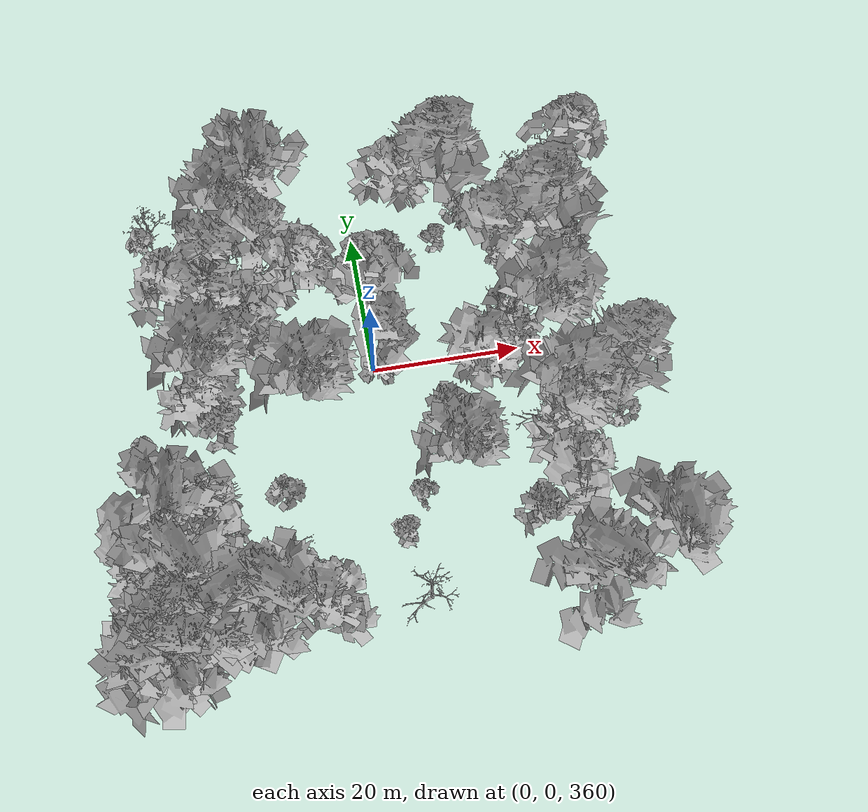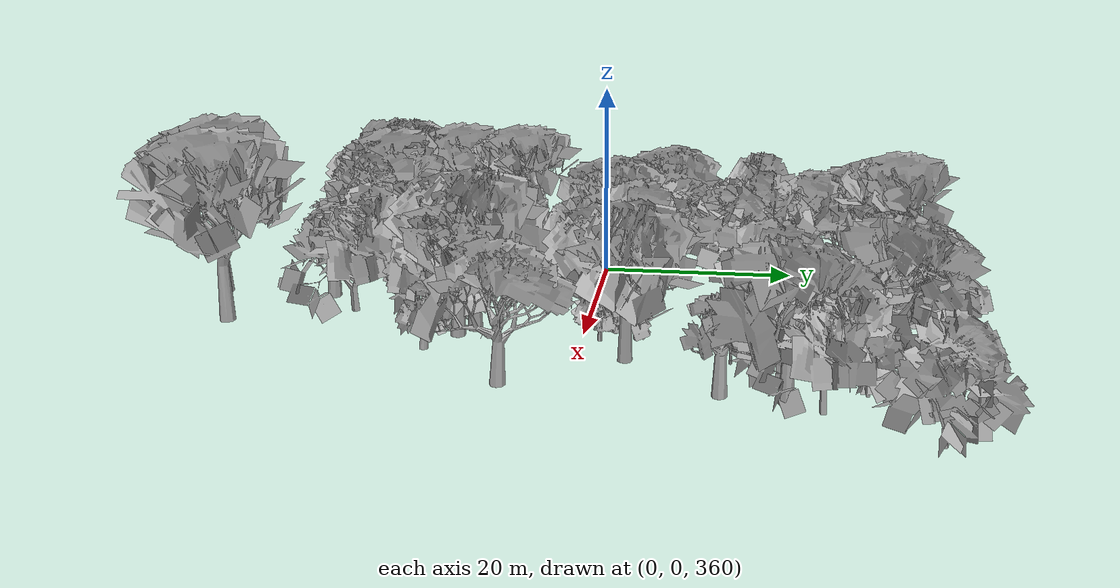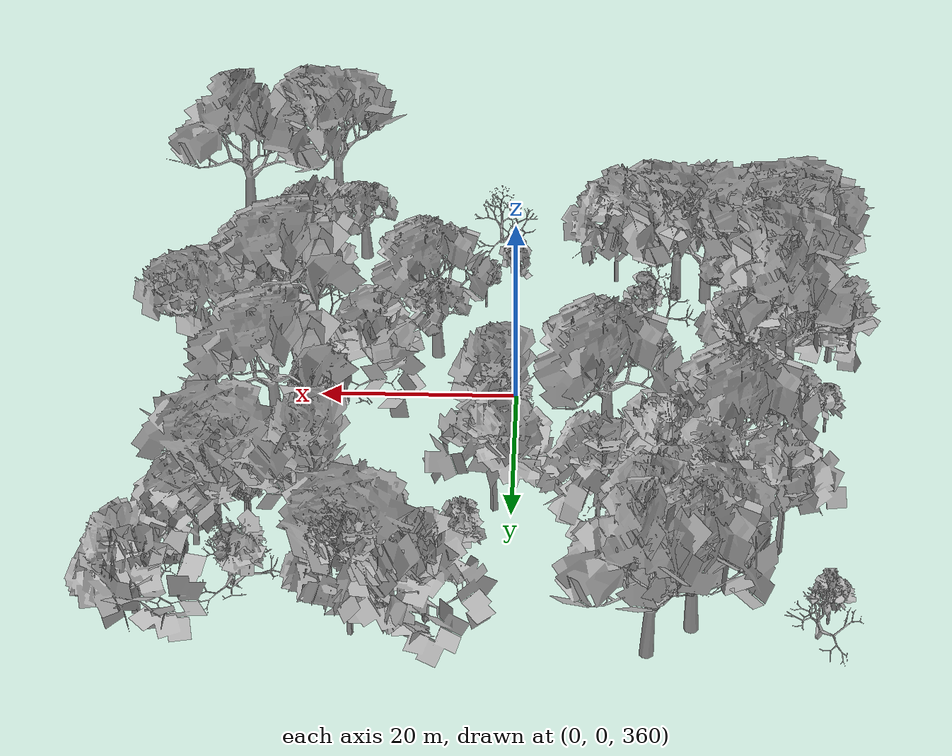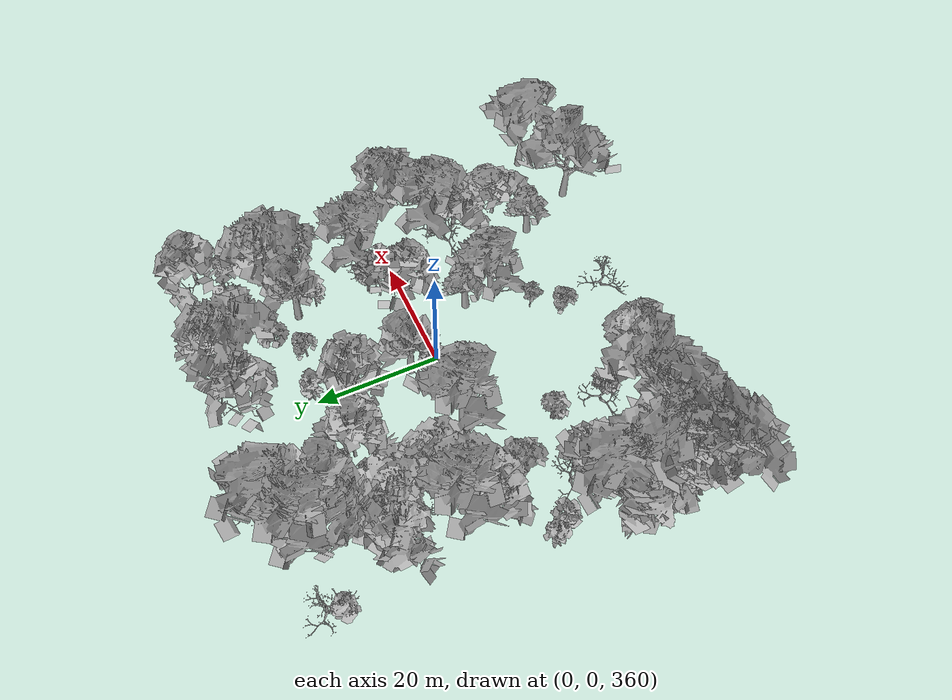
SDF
<sdf version="1.6">
 <world name="default">
  <light name="sun" type="directional">
   <pose>0 0 10 0 -0 0</pose>
   <diffuse>0.8 0.8 0.8 1</diffuse>
   <specular>0.2 0.2 0.2 1</specular>
   <attenuation>
    <range>1000</range>
    <constant>0.9</constant>
    <linear>0.01</linear>
    <quadratic>0.001</quadratic>
   </attenuation>
   <direction>-0.5 0.1 -0.9</direction>
  </light>
  <scene>
   <sky><clouds><speed>12</speed></clouds></sky>
   <ambient>0.4 0.4 0.4 1</ambient>
   <background>0.7 0.7 0.7 1</background>
   <shadows>1</shadows>
  </scene>
  <spherical_coordinates>
   <surface_model>EARTH_WGS84</surface_model>
   <latitude_deg>47.3977</latitude_deg>
   <longitude_deg>8.54559</longitude_deg>
   <elevation>0</elevation>
   <heading_deg>0</heading_deg>
  </spherical_coordinates>
  <physics name="default_physics" default="0" type="ode">
   <ode>
    <solver>
     <type>quick</type>
     <iters>100</iters>
     <sor>1.3</sor>
     <use_dynamic_moi_rescaling>0</use_dynamic_moi_rescaling>
    </solver>
    <constraints>
     <cfm>0</cfm>
     <erp>0.2</erp>
     <contact_max_correcting_vel>100</contact_max_correcting_vel>
     <contact_surface_layer>0.001</contact_surface_layer>
    </constraints>
   </ode>
   <max_step_size>0.002</max_step_size>
   <real_time_factor>1</real_time_factor>
   <real_time_update_rate>500</real_time_update_rate>
  </physics>
  <gravity>0 0 -9.8</gravity>
  <magnetic_field>6e-06 2.3e-05 -4.2e-05</magnetic_field>
  <atmosphere type="adiabatic"/>
  <model name="my_mesh0">
   <pose>-21.0937 -29.2709 353.945 0 -0 0.803392</pose>
   <static>1</static>
   <link name="body">
    <visual name="visual">
     <geometry><mesh><uri>model://trees/10.dae</uri><scale>1 1 1</scale></mesh></geometry>
    </visual>
    <collision name="collision">
     <geometry><mesh><uri>model://trees/10.dae</uri><scale>1 1 1</scale></mesh></geometry>
    </collision>
   </link>
  </model>
  <model name="my_mesh1">
   <pose>-24.0967 -15.4339 353.551 0 -0 0.325748</pose>
   <static>1</static>
   <link name="body">
    <visual name="visual">
     <geometry><mesh><uri>model://trees/13.dae</uri><scale>1 1 1</scale></mesh></geometry>
    </visual>
    <collision name="collision">
     <geometry><mesh><uri>model://trees/13.dae</uri><scale>1 1 1</scale></mesh></geometry>
    </collision>
   </link>
  </model>
  <model name="my_mesh2">
   <pose>-28.8484 -27.6677 352.948 0 0 -1.1947</pose>
   <static>1</static>
   <link name="body">
    <visual name="visual">
     <geometry><mesh><uri>model://trees/3.dae</uri><scale>1 1 1</scale></mesh></geometry>
    </visual>
    <collision name="collision">
     <geometry><mesh><uri>model://trees/3.dae</uri><scale>1 1 1</scale></mesh></geometry>
    </collision>
   </link>
  </model>
  <model name="my_mesh3">
   <pose>-23.1699 -17.8684 353.711 0 0 -0.718044</pose>
   <static>1</static>
   <link name="body">
    <visual name="visual">
     <geometry><mesh><uri>model://trees/19.dae</uri><scale>1 1 1</scale></mesh></geometry>
    </visual>
    <collision name="collision">
     <geometry><mesh><uri>model://trees/19.dae</uri><scale>1 1 1</scale></mesh></geometry>
    </collision>
   </link>
  </model>
  <model name="my_mesh4">
   <pose>-29.9244 -28.579 352.865 0 -0 0.68957</pose>
   <static>1</static>
   <link name="body">
    <visual name="visual">
     <geometry><mesh><uri>model://trees/13.dae</uri><scale>1 1 1</scale></mesh></geometry>
    </visual>
    <collision name="collision">
     <geometry><mesh><uri>model://trees/13.dae</uri><scale>1 1 1</scale></mesh></geometry>
    </collision>
   </link>
  </model>
  <model name="my_mesh5">
   <pose>-32.4097 -27.014 352.391 0 -0 1.21847</pose>
   <static>1</static>
   <link name="body">
    <visual name="visual">
     <geometry><mesh><uri>model://trees/5.dae</uri><scale>1 1 1</scale></mesh></geometry>
    </visual>
    <collision name="collision">
     <geometry><mesh><uri>model://trees/5.dae</uri><scale>1 1 1</scale></mesh></geometry>
    </collision>
   </link>
  </model>
  <model name="my_mesh6">
   <pose>-23.5119 -28.0238 353.686 0 -0 0.191513</pose>
   <static>1</static>
   <link name="body">
    <visual name="visual">
     <geometry><mesh><uri>model://trees/3.dae</uri><scale>1 1 1</scale></mesh></geometry>
    </visual>
    <collision name="collision">
     <geometry><mesh><uri>model://trees/3.dae</uri><scale>1 1 1</scale></mesh></geometry>
    </collision>
   </link>
  </model>
  <model name="my_mesh7">
   <pose>-34.4736 -19.7053 352.024 0 0 -0.245317</pose>
   <static>1</static>
   <link name="body">
    <visual name="visual">
     <geometry><mesh><uri>model://trees/13.dae</uri><scale>1 1 1</scale></mesh></geometry>
    </visual>
    <collision name="collision">
     <geometry><mesh><uri>model://trees/13.dae</uri><scale>1 1 1</scale></mesh></geometry>
    </collision>
   </link>
  </model>
  <model name="my_mesh8">
   <pose>-29.6144 -18.1094 352.711 0 -0 0.278725</pose>
   <static>1</static>
   <link name="body">
    <visual name="visual">
     <geometry><mesh><uri>model://trees/7.dae</uri><scale>1 1 1</scale></mesh></geometry>
    </visual>
    <collision name="collision">
     <geometry><mesh><uri>model://trees/7.dae</uri><scale>1 1 1</scale></mesh></geometry>
    </collision>
   </link>
  </model>
  <model name="my_mesh9">
   <pose>-31.7036 -28.1251 352.481 0 0 -1.17195</pose>
   <static>1</static>
   <link name="body">
    <visual name="visual">
     <geometry><mesh><uri>model://trees/14.dae</uri><scale>1 1 1</scale></mesh></geometry>
    </visual>
    <collision name="collision">
     <geometry><mesh><uri>model://trees/14.dae</uri><scale>1 1 1</scale></mesh></geometry>
    </collision>
   </link>
  </model>
  <model name="my_mesh10">
   <pose>-24.0845 -27.4253 353.578 0 0 -1.37187</pose>
   <static>1</static>
   <link name="body">
    <visual name="visual">
     <geometry><mesh><uri>model://trees/7.dae</uri><scale>1 1 1</scale></mesh></geometry>
    </visual>
    <collision name="collision">
     <geometry><mesh><uri>model://trees/7.dae</uri><scale>1 1 1</scale></mesh></geometry>
    </collision>
   </link>
  </model>
  <model name="my_mesh11">
   <pose>-31.2506 -33.5179 352.754 0 -0 0.18969</pose>
   <static>1</static>
   <link name="body">
    <visual name="visual">
     <geometry><mesh><uri>model://trees/15.dae</uri><scale>1 1 1</scale></mesh></geometry>
    </visual>
    <collision name="collision">
     <geometry><mesh><uri>model://trees/15.dae</uri><scale>1 1 1</scale></mesh></geometry>
    </collision>
   </link>
  </model>
  <model name="my_mesh12">
   <pose>-30.0715 -30.1275 352.904 0 -0 1.36698</pose>
   <static>1</static>
   <link name="body">
    <visual name="visual">
     <geometry><mesh><uri>model://trees/10.dae</uri><scale>1 1 1</scale></mesh></geometry>
    </visual>
    <collision name="collision">
     <geometry><mesh><uri>model://trees/10.dae</uri><scale>1 1 1</scale></mesh></geometry>
    </collision>
   </link>
  </model>
  <model name="my_mesh13">
   <pose>-29.1283 -20.3893 352.859 0 0 -0.815976</pose>
   <static>1</static>
   <link name="body">
    <visual name="visual">
     <geometry><mesh><uri>model://trees/8.dae</uri><scale>1 1 1</scale></mesh></geometry>
    </visual>
    <collision name="collision">
     <geometry><mesh><uri>model://trees/8.dae</uri><scale>1 1 1</scale></mesh></geometry>
    </collision>
   </link>
  </model>
  <model name="my_mesh14">
   <pose>-33.6854 -34.6456 352.207 0 -0 0.095934</pose>
   <static>1</static>
   <link name="body">
    <visual name="visual">
     <geometry><mesh><uri>model://trees/9.dae</uri><scale>1 1 1</scale></mesh></geometry>
    </visual>
    <collision name="collision">
     <geometry><mesh><uri>model://trees/9.dae</uri><scale>1 1 1</scale></mesh></geometry>
    </collision>
   </link>
  </model>
  <model name="my_mesh15">
   <pose>-29.0877 -18.7333 352.818 0 -0 0.431431</pose>
   <static>1</static>
   <link name="body">
    <visual name="visual">
     <geometry><mesh><uri>model://trees/16.dae</uri><scale>1 1 1</scale></mesh></geometry>
    </visual>
    <collision name="collision">
     <geometry><mesh><uri>model://trees/16.dae</uri><scale>1 1 1</scale></mesh></geometry>
    </collision>
   </link>
  </model>
  <model name="my_mesh16">
   <pose>-30.6814 -24.1357 352.759 0 0 -0.126395</pose>
   <static>1</static>
   <link name="body">
    <visual name="visual">
     <geometry><mesh><uri>model://trees/12.dae</uri><scale>1 1 1</scale></mesh></geometry>
    </visual>
    <collision name="collision">
     <geometry><mesh><uri>model://trees/12.dae</uri><scale>1 1 1</scale></mesh></geometry>
    </collision>
   </link>
  </model>
  <model name="my_mesh17">
   <pose>-28.2578 -27.3263 353.018 0 -0 1.54987</pose>
   <static>1</static>
   <link name="body">
    <visual name="visual">
     <geometry><mesh><uri>model://trees/18.dae</uri><scale>1 1 1</scale></mesh></geometry>
    </visual>
    <collision name="collision">
     <geometry><mesh><uri>model://trees/18.dae</uri><scale>1 1 1</scale></mesh></geometry>
    </collision>
   </link>
  </model>
  <model name="my_mesh18">
   <pose>-29.8808 -30.0268 352.894 0 -0 0.288132</pose>
   <static>1</static>
   <link name="body">
    <visual name="visual">
     <geometry><mesh><uri>model://trees/10.dae</uri><scale>1 1 1</scale></mesh></geometry>
    </visual>
    <collision name="collision">
     <geometry><mesh><uri>model://trees/10.dae</uri><scale>1 1 1</scale></mesh></geometry>
    </collision>
   </link>
  </model>
  <model name="my_mesh19">
   <pose>-28.3711 -30.736 353.081 0 -0 1.29102</pose>
   <static>1</static>
   <link name="body">
    <visual name="visual">
     <geometry><mesh><uri>model://trees/16.dae</uri><scale>1 1 1</scale></mesh></geometry>
    </visual>
    <collision name="collision">
     <geometry><mesh><uri>model://trees/16.dae</uri><scale>1 1 1</scale></mesh></geometry>
    </collision>
   </link>
  </model>
  <model name="my_mesh20">
   <pose>-32.4867 -30.1133 352.427 0 -0 1.41994</pose>
   <static>1</static>
   <link name="body">
    <visual name="visual">
     <geometry><mesh><uri>model://trees/3.dae</uri><scale>1 1 1</scale></mesh></geometry>
    </visual>
    <collision name="collision">
     <geometry><mesh><uri>model://trees/3.dae</uri><scale>1 1 1</scale></mesh></geometry>
    </collision>
   </link>
  </model>
  <model name="my_mesh21">
   <pose>-25.061 -11.382 353.367 0 -0 0.464776</pose>
   <static>1</static>
   <link name="body">
    <visual name="visual">
     <geometry><mesh><uri>model://trees/19.dae</uri><scale>1 1 1</scale></mesh></geometry>
    </visual>
    <collision name="collision">
     <geometry><mesh><uri>model://trees/19.dae</uri><scale>1 1 1</scale></mesh></geometry>
    </collision>
   </link>
  </model>
  <model name="my_mesh22">
   <pose>-25.4407 -30.2894 353.395 0 0 -0.751216</pose>
   <static>1</static>
   <link name="body">
    <visual name="visual">
     <geometry><mesh><uri>model://trees/2.dae</uri><scale>1 1 1</scale></mesh></geometry>
    </visual>
    <collision name="collision">
     <geometry><mesh><uri>model://trees/2.dae</uri><scale>1 1 1</scale></mesh></geometry>
    </collision>
   </link>
  </model>
  <model name="my_mesh23">
   <pose>-22.2885 -33.4067 353.871 0 -0 0.833382</pose>
   <static>1</static>
   <link name="body">
    <visual name="visual">
     <geometry><mesh><uri>model://trees/11.dae</uri><scale>1 1 1</scale></mesh></geometry>
    </visual>
    <collision name="collision">
     <geometry><mesh><uri>model://trees/11.dae</uri><scale>1 1 1</scale></mesh></geometry>
    </collision>
   </link>
  </model>
  <model name="my_mesh24">
   <pose>-32.5269 -4.64422 352.818 0 0 -0.178767</pose>
   <static>1</static>
   <link name="body">
    <visual name="visual">
     <geometry><mesh><uri>model://trees/2.dae</uri><scale>1 1 1</scale></mesh></geometry>
    </visual>
    <collision name="collision">
     <geometry><mesh><uri>model://trees/2.dae</uri><scale>1 1 1</scale></mesh></geometry>
    </collision>
   </link>
  </model>
  <model name="my_mesh25">
   <pose>-30.4619 -28.241 352.772 0 -0 0.297751</pose>
   <static>1</static>
   <link name="body">
    <visual name="visual">
     <geometry><mesh><uri>model://trees/13.dae</uri><scale>1 1 1</scale></mesh></geometry>
    </visual>
    <collision name="collision">
     <geometry><mesh><uri>model://trees/13.dae</uri><scale>1 1 1</scale></mesh></geometry>
    </collision>
   </link>
  </model>
  <model name="my_mesh26">
   <pose>-29.2107 -13.8261 352.818 0 0 -1.39613</pose>
   <static>1</static>
   <link name="body">
    <visual name="visual">
     <geometry><mesh><uri>model://trees/10.dae</uri><scale>1 1 1</scale></mesh></geometry>
    </visual>
    <collision name="collision">
     <geometry><mesh><uri>model://trees/10.dae</uri><scale>1 1 1</scale></mesh></geometry>
    </collision>
   </link>
  </model>
  <model name="my_mesh27">
   <pose>-34.3695 -32.342 352.13 0 0 -1.32479</pose>
   <static>1</static>
   <link name="body">
    <visual name="visual">
     <geometry><mesh><uri>model://trees/2.dae</uri><scale>1 1 1</scale></mesh></geometry>
    </visual>
    <collision name="collision">
     <geometry><mesh><uri>model://trees/2.dae</uri><scale>1 1 1</scale></mesh></geometry>
    </collision>
   </link>
  </model>
  <model name="my_mesh28">
   <pose>-28.1252 -32.7603 353.118 0 0 -1.31243</pose>
   <static>1</static>
   <link name="body">
    <visual name="visual">
     <geometry><mesh><uri>model://trees/7.dae</uri><scale>1 1 1</scale></mesh></geometry>
    </visual>
    <collision name="collision">
     <geometry><mesh><uri>model://trees/7.dae</uri><scale>1 1 1</scale></mesh></geometry>
    </collision>
   </link>
  </model>
  <model name="my_mesh29">
   <pose>-29.2169 -22.7895 352.891 0 0 -0.781876</pose>
   <static>1</static>
   <link name="body">
    <visual name="visual">
     <geometry><mesh><uri>model://trees/10.dae</uri><scale>1 1 1</scale></mesh></geometry>
    </visual>
    <collision name="collision">
     <geometry><mesh><uri>model://trees/10.dae</uri><scale>1 1 1</scale></mesh></geometry>
    </collision>
   </link>
  </model>
  <model name="my_mesh30">
   <pose>-30.6074 -33.4955 352.879 0 0 -0.028469</pose>
   <static>1</static>
   <link name="body">
    <visual name="visual">
     <geometry><mesh><uri>model://trees/10.dae</uri><scale>1 1 1</scale></mesh></geometry>
    </visual>
    <collision name="collision">
     <geometry><mesh><uri>model://trees/10.dae</uri><scale>1 1 1</scale></mesh></geometry>
    </collision>
   </link>
  </model>
  <model name="my_mesh31">
   <pose>-28.537 -34.5009 353.165 0 -0 1.41308</pose>
   <static>1</static>
   <link name="body">
    <visual name="visual">
     <geometry><mesh><uri>model://trees/12.dae</uri><scale>1 1 1</scale></mesh></geometry>
    </visual>
    <collision name="collision">
     <geometry><mesh><uri>model://trees/12.dae</uri><scale>1 1 1</scale></mesh></geometry>
    </collision>
   </link>
  </model>
  <model name="my_mesh32">
   <pose>-10.8207 -30.727 355.674 0 -0 0.954999</pose>
   <static>1</static>
   <link name="body">
    <visual name="visual">
     <geometry><mesh><uri>model://trees/15.dae</uri><scale>1 1 1</scale></mesh></geometry>
    </visual>
    <collision name="collision">
     <geometry><mesh><uri>model://trees/15.dae</uri><scale>1 1 1</scale></mesh></geometry>
    </collision>
   </link>
  </model>
  <model name="my_mesh33">
   <pose>24.2402 -9.494 361.699 0 0 -1.3992</pose>
   <static>1</static>
   <link name="body">
    <visual name="visual">
     <geometry><mesh><uri>model://trees/9.dae</uri><scale>1 1 1</scale></mesh></geometry>
    </visual>
    <collision name="collision">
     <geometry><mesh><uri>model://trees/9.dae</uri><scale>1 1 1</scale></mesh></geometry>
    </collision>
   </link>
  </model>
  <model name="my_mesh34">
   <pose>11.6512 18.4843 356.266 0 -0 0.754608</pose>
   <static>1</static>
   <link name="body">
    <visual name="visual">
     <geometry><mesh><uri>model://trees/6.dae</uri><scale>1 1 1</scale></mesh></geometry>
    </visual>
    <collision name="collision">
     <geometry><mesh><uri>model://trees/6.dae</uri><scale>1 1 1</scale></mesh></geometry>
    </collision>
   </link>
  </model>
  <model name="my_mesh35">
   <pose>7.59549 29.8574 355.234 0 0 -0.29062</pose>
   <static>1</static>
   <link name="body">
    <visual name="visual">
     <geometry><mesh><uri>model://trees/12.dae</uri><scale>1 1 1</scale></mesh></geometry>
    </visual>
    <collision name="collision">
     <geometry><mesh><uri>model://trees/12.dae</uri><scale>1 1 1</scale></mesh></geometry>
    </collision>
   </link>
  </model>
  <model name="my_mesh36">
   <pose>-16.5834 22.527 354.117 0 0 -0.550388</pose>
   <static>1</static>
   <link name="body">
    <visual name="visual">
     <geometry><mesh><uri>model://trees/3.dae</uri><scale>1 1 1</scale></mesh></geometry>
    </visual>
    <collision name="collision">
     <geometry><mesh><uri>model://trees/3.dae</uri><scale>1 1 1</scale></mesh></geometry>
    </collision>
   </link>
  </model>
  <model name="my_mesh37">
   <pose>-9.44508 -0.34516 355.406 0 0 -0.841924</pose>
   <static>1</static>
   <link name="body">
    <visual name="visual">
     <geometry><mesh><uri>model://trees/9.dae</uri><scale>1 1 1</scale></mesh></geometry>
    </visual>
    <collision name="collision">
     <geometry><mesh><uri>model://trees/9.dae</uri><scale>1 1 1</scale></mesh></geometry>
    </collision>
   </link>
  </model>
  <model name="my_mesh38">
   <pose>-14.9752 -22.5165 354.799 0 0 -1.2599</pose>
   <static>1</static>
   <link name="body">
    <visual name="visual">
     <geometry><mesh><uri>model://trees/19.dae</uri><scale>1 1 1</scale></mesh></geometry>
    </visual>
    <collision name="collision">
     <geometry><mesh><uri>model://trees/19.dae</uri><scale>1 1 1</scale></mesh></geometry>
    </collision>
   </link>
  </model>
  <model name="my_mesh39">
   <pose>26.3848 -10.6156 361.888 0 0 -0.46755</pose>
   <static>1</static>
   <link name="body">
    <visual name="visual">
     <geometry><mesh><uri>model://trees/8.dae</uri><scale>1 1 1</scale></mesh></geometry>
    </visual>
    <collision name="collision">
     <geometry><mesh><uri>model://trees/8.dae</uri><scale>1 1 1</scale></mesh></geometry>
    </collision>
   </link>
  </model>
  <model name="my_mesh40">
   <pose>15.7483 22.7051 356.811 0 0 -1.55677</pose>
   <static>1</static>
   <link name="body">
    <visual name="visual">
     <geometry><mesh><uri>model://trees/4.dae</uri><scale>1 1 1</scale></mesh></geometry>
    </visual>
    <collision name="collision">
     <geometry><mesh><uri>model://trees/4.dae</uri><scale>1 1 1</scale></mesh></geometry>
    </collision>
   </link>
  </model>
  <model name="my_mesh41">
   <pose>-28.5342 29.14 353.177 0 -0 0.119997</pose>
   <static>1</static>
   <link name="body">
    <visual name="visual">
     <geometry><mesh><uri>model://trees/18.dae</uri><scale>1 1 1</scale></mesh></geometry>
    </visual>
    <collision name="collision">
     <geometry><mesh><uri>model://trees/18.dae</uri><scale>1 1 1</scale></mesh></geometry>
    </collision>
   </link>
  </model>
  <model name="my_mesh42">
   <pose>-19.5288 21.2679 353.87 0 -0 0.416565</pose>
   <static>1</static>
   <link name="body">
    <visual name="visual">
     <geometry><mesh><uri>model://trees/8.dae</uri><scale>1 1 1</scale></mesh></geometry>
    </visual>
    <collision name="collision">
     <geometry><mesh><uri>model://trees/8.dae</uri><scale>1 1 1</scale></mesh></geometry>
    </collision>
   </link>
  </model>
  <model name="my_mesh43">
   <pose>-12.5758 32.779 354.109 0 0 -1.31906</pose>
   <static>1</static>
   <link name="body">
    <visual name="visual">
     <geometry><mesh><uri>model://trees/10.dae</uri><scale>1 1 1</scale></mesh></geometry>
    </visual>
    <collision name="collision">
     <geometry><mesh><uri>model://trees/10.dae</uri><scale>1 1 1</scale></mesh></geometry>
    </collision>
   </link>
  </model>
  <model name="my_mesh44">
   <pose>-14.8237 7.59685 354.589 0 -0 0.719187</pose>
   <static>1</static>
   <link name="body">
    <visual name="visual">
     <geometry><mesh><uri>model://trees/13.dae</uri><scale>1 1 1</scale></mesh></geometry>
    </visual>
    <collision name="collision">
     <geometry><mesh><uri>model://trees/13.dae</uri><scale>1 1 1</scale></mesh></geometry>
    </collision>
   </link>
  </model>
  <model name="my_mesh45">
   <pose>14.2549 32.4206 355.708 0 -0 0.540369</pose>
   <static>1</static>
   <link name="body">
    <visual name="visual">
     <geometry><mesh><uri>model://trees/15.dae</uri><scale>1 1 1</scale></mesh></geometry>
    </visual>
    <collision name="collision">
     <geometry><mesh><uri>model://trees/15.dae</uri><scale>1 1 1</scale></mesh></geometry>
    </collision>
   </link>
  </model>
  <model name="my_mesh46">
   <pose>-23.0754 0.305509 354.078 0 0 -1.36816</pose>
   <static>1</static>
   <link name="body">
    <visual name="visual">
     <geometry><mesh><uri>model://trees/13.dae</uri><scale>1 1 1</scale></mesh></geometry>
    </visual>
    <collision name="collision">
     <geometry><mesh><uri>model://trees/13.dae</uri><scale>1 1 1</scale></mesh></geometry>
    </collision>
   </link>
  </model>
  <model name="my_mesh47">
   <pose>28.4452 18.7228 357.652 0 -0 1.49898</pose>
   <static>1</static>
   <link name="body">
    <visual name="visual">
     <geometry><mesh><uri>model://trees/9.dae</uri><scale>1 1 1</scale></mesh></geometry>
    </visual>
    <collision name="collision">
     <geometry><mesh><uri>model://trees/9.dae</uri><scale>1 1 1</scale></mesh></geometry>
    </collision>
   </link>
  </model>
  <model name="my_mesh48">
   <pose>29.1923 12.9495 358.355 0 -0 1.48645</pose>
   <static>1</static>
   <link name="body">
    <visual name="visual">
     <geometry><mesh><uri>model://trees/7.dae</uri><scale>1 1 1</scale></mesh></geometry>
    </visual>
    <collision name="collision">
     <geometry><mesh><uri>model://trees/7.dae</uri><scale>1 1 1</scale></mesh></geometry>
    </collision>
   </link>
  </model>
  <model name="my_mesh49">
   <pose>-14.0721 17.5345 354.425 0 0 -0.764304</pose>
   <static>1</static>
   <link name="body">
    <visual name="visual">
     <geometry><mesh><uri>model://trees/19.dae</uri><scale>1 1 1</scale></mesh></geometry>
    </visual>
    <collision name="collision">
     <geometry><mesh><uri>model://trees/19.dae</uri><scale>1 1 1</scale></mesh></geometry>
    </collision>
   </link>
  </model>
  <model name="my_mesh50">
   <pose>8.52029 -9.06345 359.086 0 0 -0.209013</pose>
   <static>1</static>
   <link name="body">
    <visual name="visual">
     <geometry><mesh><uri>model://trees/7.dae</uri><scale>1 1 1</scale></mesh></geometry>
    </visual>
    <collision name="collision">
     <geometry><mesh><uri>model://trees/7.dae</uri><scale>1 1 1</scale></mesh></geometry>
    </collision>
   </link>
  </model>
  <model name="my_mesh51">
   <pose>25.552 27.5409 357.231 0 0 -1.00813</pose>
   <static>1</static>
   <link name="body">
    <visual name="visual">
     <geometry><mesh><uri>model://trees/19.dae</uri><scale>1 1 1</scale></mesh></geometry>
    </visual>
    <collision name="collision">
     <geometry><mesh><uri>model://trees/19.dae</uri><scale>1 1 1</scale></mesh></geometry>
    </collision>
   </link>
  </model>
  <model name="my_mesh52">
   <pose>-13.0878 23.1092 354.485 0 0 -0.331727</pose>
   <static>1</static>
   <link name="body">
    <visual name="visual">
     <geometry><mesh><uri>model://trees/11.dae</uri><scale>1 1 1</scale></mesh></geometry>
    </visual>
    <collision name="collision">
     <geometry><mesh><uri>model://trees/11.dae</uri><scale>1 1 1</scale></mesh></geometry>
    </collision>
   </link>
  </model>
  <model name="my_mesh53">
   <pose>25.2312 18.5208 357.702 0 -0 0.098536</pose>
   <static>1</static>
   <link name="body">
    <visual name="visual">
     <geometry><mesh><uri>model://trees/3.dae</uri><scale>1 1 1</scale></mesh></geometry>
    </visual>
    <collision name="collision">
     <geometry><mesh><uri>model://trees/3.dae</uri><scale>1 1 1</scale></mesh></geometry>
    </collision>
   </link>
  </model>
  <model name="my_mesh54">
   <pose>-14.2242 -14.2795 354.788 0 0 -0.232914</pose>
   <static>1</static>
   <link name="body">
    <visual name="visual">
     <geometry><mesh><uri>model://trees/4.dae</uri><scale>1 1 1</scale></mesh></geometry>
    </visual>
    <collision name="collision">
     <geometry><mesh><uri>model://trees/4.dae</uri><scale>1 1 1</scale></mesh></geometry>
    </collision>
   </link>
  </model>
  <model name="my_mesh55">
   <pose>31.0448 -12.5978 362.37 0 0 -0.84817</pose>
   <static>1</static>
   <link name="body">
    <visual name="visual">
     <geometry><mesh><uri>model://trees/0.dae</uri><scale>1 1 1</scale></mesh></geometry>
    </visual>
    <collision name="collision">
     <geometry><mesh><uri>model://trees/0.dae</uri><scale>1 1 1</scale></mesh></geometry>
    </collision>
   </link>
  </model>
  <model name="my_mesh56">
   <pose>-13.8737 -23.6187 354.878 0 -0 1.39987</pose>
   <static>1</static>
   <link name="body">
    <visual name="visual">
     <geometry><mesh><uri>model://trees/1.dae</uri><scale>1 1 1</scale></mesh></geometry>
    </visual>
    <collision name="collision">
     <geometry><mesh><uri>model://trees/1.dae</uri><scale>1 1 1</scale></mesh></geometry>
    </collision>
   </link>
  </model>
  <model name="my_mesh57">
   <pose>-16.8295 28.9985 353.928 0 0 -0.88431</pose>
   <static>1</static>
   <link name="body">
    <visual name="visual">
     <geometry><mesh><uri>model://trees/9.dae</uri><scale>1 1 1</scale></mesh></geometry>
    </visual>
    <collision name="collision">
     <geometry><mesh><uri>model://trees/9.dae</uri><scale>1 1 1</scale></mesh></geometry>
    </collision>
   </link>
  </model>
  <model name="my_mesh58">
   <pose>1.8389 13.5635 355.742 0 -0 1.30541</pose>
   <static>1</static>
   <link name="body">
    <visual name="visual">
     <geometry><mesh><uri>model://trees/14.dae</uri><scale>1 1 1</scale></mesh></geometry>
    </visual>
    <collision name="collision">
     <geometry><mesh><uri>model://trees/14.dae</uri><scale>1 1 1</scale></mesh></geometry>
    </collision>
   </link>
  </model>
  <model name="my_mesh59">
   <pose>-27.7807 -21.6076 353.084 0 0 -0.275978</pose>
   <static>1</static>
   <link name="body">
    <visual name="visual">
     <geometry><mesh><uri>model://trees/5.dae</uri><scale>1 1 1</scale></mesh></geometry>
    </visual>
    <collision name="collision">
     <geometry><mesh><uri>model://trees/5.dae</uri><scale>1 1 1</scale></mesh></geometry>
    </collision>
   </link>
  </model>
  <model name="my_mesh60">
   <pose>4.88159 19.6264 355.363 0 0 -0.154197</pose>
   <static>1</static>
   <link name="body">
    <visual name="visual">
     <geometry><mesh><uri>model://trees/0.dae</uri><scale>1 1 1</scale></mesh></geometry>
    </visual>
    <collision name="collision">
     <geometry><mesh><uri>model://trees/0.dae</uri><scale>1 1 1</scale></mesh></geometry>
    </collision>
   </link>
  </model>
  <model name="my_mesh61">
   <pose>9.28057 -14.1936 359.651 0 0 -0.806352</pose>
   <static>1</static>
   <link name="body">
    <visual name="visual">
     <geometry><mesh><uri>model://trees/8.dae</uri><scale>1 1 1</scale></mesh></geometry>
    </visual>
    <collision name="collision">
     <geometry><mesh><uri>model://trees/8.dae</uri><scale>1 1 1</scale></mesh></geometry>
    </collision>
   </link>
  </model>
  <model name="my_mesh62">
   <pose>-20.6785 13.584 353.92 0 0 -0.113926</pose>
   <static>1</static>
   <link name="body">
    <visual name="visual">
     <geometry><mesh><uri>model://trees/18.dae</uri><scale>1 1 1</scale></mesh></geometry>
    </visual>
    <collision name="collision">
     <geometry><mesh><uri>model://trees/18.dae</uri><scale>1 1 1</scale></mesh></geometry>
    </collision>
   </link>
  </model>
  <model name="my_mesh63">
   <pose>29.7412 21.8375 357.54 0 0 -0.667041</pose>
   <static>1</static>
   <link name="body">
    <visual name="visual">
     <geometry><mesh><uri>model://trees/13.dae</uri><scale>1 1 1</scale></mesh></geometry>
    </visual>
    <collision name="collision">
     <geometry><mesh><uri>model://trees/13.dae</uri><scale>1 1 1</scale></mesh></geometry>
    </collision>
   </link>
  </model>
  <model name="my_mesh64">
   <pose>24.0567 4.2684 359.183 0 0 -1.30004</pose>
   <static>1</static>
   <link name="body">
    <visual name="visual">
     <geometry><mesh><uri>model://trees/9.dae</uri><scale>1 1 1</scale></mesh></geometry>
    </visual>
    <collision name="collision">
     <geometry><mesh><uri>model://trees/9.dae</uri><scale>1 1 1</scale></mesh></geometry>
    </collision>
   </link>
  </model>
  <model name="my_mesh65">
   <pose>-21.0919 17.2651 353.78 0 0 -0.969145</pose>
   <static>1</static>
   <link name="body">
    <visual name="visual">
     <geometry><mesh><uri>model://trees/16.dae</uri><scale>1 1 1</scale></mesh></geometry>
    </visual>
    <collision name="collision">
     <geometry><mesh><uri>model://trees/16.dae</uri><scale>1 1 1</scale></mesh></geometry>
    </collision>
   </link>
  </model>
  <model name="my_mesh66">
   <pose>3.76982 -18.8808 359.183 0 -0 0.108202</pose>
   <static>1</static>
   <link name="body">
    <visual name="visual">
     <geometry><mesh><uri>model://trees/3.dae</uri><scale>1 1 1</scale></mesh></geometry>
    </visual>
    <collision name="collision">
     <geometry><mesh><uri>model://trees/3.dae</uri><scale>1 1 1</scale></mesh></geometry>
    </collision>
   </link>
  </model>
  <model name="my_mesh67">
   <pose>2.45278 -31.9314 359.981 0 0 -0.854789</pose>
   <static>1</static>
   <link name="body">
    <visual name="visual">
     <geometry><mesh><uri>model://trees/18.dae</uri><scale>1 1 1</scale></mesh></geometry>
    </visual>
    <collision name="collision">
     <geometry><mesh><uri>model://trees/18.dae</uri><scale>1 1 1</scale></mesh></geometry>
    </collision>
   </link>
  </model>
  <model name="my_mesh68">
   <pose>-25.8617 16.7269 353.289 0 0 -1.46087</pose>
   <static>1</static>
   <link name="body">
    <visual name="visual">
     <geometry><mesh><uri>model://trees/14.dae</uri><scale>1 1 1</scale></mesh></geometry>
    </visual>
    <collision name="collision">
     <geometry><mesh><uri>model://trees/14.dae</uri><scale>1 1 1</scale></mesh></geometry>
    </collision>
   </link>
  </model>
  <model name="my_mesh69">
   <pose>-22.8077 5.75348 353.932 0 0 -0.814696</pose>
   <static>1</static>
   <link name="body">
    <visual name="visual">
     <geometry><mesh><uri>model://trees/9.dae</uri><scale>1 1 1</scale></mesh></geometry>
    </visual>
    <collision name="collision">
     <geometry><mesh><uri>model://trees/9.dae</uri><scale>1 1 1</scale></mesh></geometry>
    </collision>
   </link>
  </model>
  <model name="my_mesh70">
   <pose>-17.2632 14.4825 354.2 0 -0 1.52435</pose>
   <static>1</static>
   <link name="body">
    <visual name="visual">
     <geometry><mesh><uri>model://trees/13.dae</uri><scale>1 1 1</scale></mesh></geometry>
    </visual>
    <collision name="collision">
     <geometry><mesh><uri>model://trees/13.dae</uri><scale>1 1 1</scale></mesh></geometry>
    </collision>
   </link>
  </model>
  <model name="my_mesh71">
   <pose>14.6308 -0.73583 359.942 0 0 -1.25618</pose>
   <static>1</static>
   <link name="body">
    <visual name="visual">
     <geometry><mesh><uri>model://trees/12.dae</uri><scale>1 1 1</scale></mesh></geometry>
    </visual>
    <collision name="collision">
     <geometry><mesh><uri>model://trees/12.dae</uri><scale>1 1 1</scale></mesh></geometry>
    </collision>
   </link>
  </model>
  <model name="my_mesh72">
   <pose>17.3702 -25.0738 361.872 0 0 -0.381072</pose>
   <static>1</static>
   <link name="body">
    <visual name="visual">
     <geometry><mesh><uri>model://trees/7.dae</uri><scale>1 1 1</scale></mesh></geometry>
    </visual>
    <collision name="collision">
     <geometry><mesh><uri>model://trees/7.dae</uri><scale>1 1 1</scale></mesh></geometry>
    </collision>
   </link>
  </model>
  <model name="my_mesh73">
   <pose>0.699424 0.271505 356.52 0 0 -1.05727</pose>
   <static>1</static>
   <link name="body">
    <visual name="visual">
     <geometry><mesh><uri>model://trees/5.dae</uri><scale>1 1 1</scale></mesh></geometry>
    </visual>
    <collision name="collision">
     <geometry><mesh><uri>model://trees/5.dae</uri><scale>1 1 1</scale></mesh></geometry>
    </collision>
   </link>
  </model>
  <model name="my_mesh74">
   <pose>23.5976 -13.433 361.99 0 0 -1.05944</pose>
   <static>1</static>
   <link name="body">
    <visual name="visual">
     <geometry><mesh><uri>model://trees/13.dae</uri><scale>1 1 1</scale></mesh></geometry>
    </visual>
    <collision name="collision">
     <geometry><mesh><uri>model://trees/13.dae</uri><scale>1 1 1</scale></mesh></geometry>
    </collision>
   </link>
  </model>
  <model name="my_mesh75">
   <pose>17.515 22.3728 357.021 0 0 -0.933133</pose>
   <static>1</static>
   <link name="body">
    <visual name="visual">
     <geometry><mesh><uri>model://trees/6.dae</uri><scale>1 1 1</scale></mesh></geometry>
    </visual>
    <collision name="collision">
     <geometry><mesh><uri>model://trees/6.dae</uri><scale>1 1 1</scale></mesh></geometry>
    </collision>
   </link>
  </model>
  <model name="my_mesh76">
   <pose>-8.2437 17.4613 355.01 0 0 -0.674752</pose>
   <static>1</static>
   <link name="body">
    <visual name="visual">
     <geometry><mesh><uri>model://trees/15.dae</uri><scale>1 1 1</scale></mesh></geometry>
    </visual>
    <collision name="collision">
     <geometry><mesh><uri>model://trees/15.dae</uri><scale>1 1 1</scale></mesh></geometry>
    </collision>
   </link>
  </model>
  <model name="my_mesh77">
   <pose>18.2956 4.79382 359.038 0 -0 1.34232</pose>
   <static>1</static>
   <link name="body">
    <visual name="visual">
     <geometry><mesh><uri>model://trees/17.dae</uri><scale>1 1 1</scale></mesh></geometry>
    </visual>
    <collision name="collision">
     <geometry><mesh><uri>model://trees/17.dae</uri><scale>1 1 1</scale></mesh></geometry>
    </collision>
   </link>
  </model>
  <model name="my_mesh78">
   <pose>21.1499 1.64701 359.88 0 -0 1.52958</pose>
   <static>1</static>
   <link name="body">
    <visual name="visual">
     <geometry><mesh><uri>model://trees/4.dae</uri><scale>1 1 1</scale></mesh></geometry>
    </visual>
    <collision name="collision">
     <geometry><mesh><uri>model://trees/4.dae</uri><scale>1 1 1</scale></mesh></geometry>
    </collision>
   </link>
  </model>
  <model name="my_mesh79">
   <pose>25.3532 18.1956 357.702 0 0 -1.23486</pose>
   <static>1</static>
   <link name="body">
    <visual name="visual">
     <geometry><mesh><uri>model://trees/13.dae</uri><scale>1 1 1</scale></mesh></geometry>
    </visual>
    <collision name="collision">
     <geometry><mesh><uri>model://trees/13.dae</uri><scale>1 1 1</scale></mesh></geometry>
    </collision>
   </link>
  </model>
  <model name="my_mesh80">
   <pose>14.9248 29.6504 356.107 0 -0 1.15698</pose>
   <static>1</static>
   <link name="body">
    <visual name="visual">
     <geometry><mesh><uri>model://trees/9.dae</uri><scale>1 1 1</scale></mesh></geometry>
    </visual>
    <collision name="collision">
     <geometry><mesh><uri>model://trees/9.dae</uri><scale>1 1 1</scale></mesh></geometry>
    </collision>
   </link>
  </model>
  <model name="my_mesh81">
   <pose>24.8062 26.1113 357.154 0 0 -0.694241</pose>
   <static>1</static>
   <link name="body">
    <visual name="visual">
     <geometry><mesh><uri>model://trees/5.dae</uri><scale>1 1 1</scale></mesh></geometry>
    </visual>
    <collision name="collision">
     <geometry><mesh><uri>model://trees/5.dae</uri><scale>1 1 1</scale></mesh></geometry>
    </collision>
   </link>
  </model>
  <model name="my_mesh82">
   <pose>21.6151 -11.1307 361.702 0 0 -1.31747</pose>
   <static>1</static>
   <link name="body">
    <visual name="visual">
     <geometry><mesh><uri>model://trees/19.dae</uri><scale>1 1 1</scale></mesh></geometry>
    </visual>
    <collision name="collision">
     <geometry><mesh><uri>model://trees/19.dae</uri><scale>1 1 1</scale></mesh></geometry>
    </collision>
   </link>
  </model>
  <model name="my_mesh83">
   <pose>-29.6849 26.9701 353.087 0 0 -1.45321</pose>
   <static>1</static>
   <link name="body">
    <visual name="visual">
     <geometry><mesh><uri>model://trees/2.dae</uri><scale>1 1 1</scale></mesh></geometry>
    </visual>
    <collision name="collision">
     <geometry><mesh><uri>model://trees/2.dae</uri><scale>1 1 1</scale></mesh></geometry>
    </collision>
   </link>
  </model>
  <model name="my_mesh84">
   <pose>0.762105 -23.6491 358.905 0 -0 0.689711</pose>
   <static>1</static>
   <link name="body">
    <visual name="visual">
     <geometry><mesh><uri>model://trees/6.dae</uri><scale>1 1 1</scale></mesh></geometry>
    </visual>
    <collision name="collision">
     <geometry><mesh><uri>model://trees/6.dae</uri><scale>1 1 1</scale></mesh></geometry>
    </collision>
   </link>
  </model>
  <model name="my_mesh85">
   <pose>33.8217 31.386 356.957 0 -0 0.49605</pose>
   <static>1</static>
   <link name="body">
    <visual name="visual">
     <geometry><mesh><uri>model://trees/12.dae</uri><scale>1 1 1</scale></mesh></geometry>
    </visual>
    <collision name="collision">
     <geometry><mesh><uri>model://trees/12.dae</uri><scale>1 1 1</scale></mesh></geometry>
    </collision>
   </link>
  </model>
  <model name="my_mesh86">
   <pose>34.0401 -5.57855 360.623 0 -0 0.773939</pose>
   <static>1</static>
   <link name="body">
    <visual name="visual">
     <geometry><mesh><uri>model://trees/8.dae</uri><scale>1 1 1</scale></mesh></geometry>
    </visual>
    <collision name="collision">
     <geometry><mesh><uri>model://trees/8.dae</uri><scale>1 1 1</scale></mesh></geometry>
    </collision>
   </link>
  </model>
  <model name="my_mesh87">
   <pose>31.0131 -30.1563 364.178 0 0 -1.28206</pose>
   <static>1</static>
   <link name="body">
    <visual name="visual">
     <geometry><mesh><uri>model://trees/10.dae</uri><scale>1 1 1</scale></mesh></geometry>
    </visual>
    <collision name="collision">
     <geometry><mesh><uri>model://trees/10.dae</uri><scale>1 1 1</scale></mesh></geometry>
    </collision>
   </link>
  </model>
  <model name="my_mesh88">
   <pose>-22.301 -15.3058 353.807 0 0 -0.933352</pose>
   <static>1</static>
   <link name="body">
    <visual name="visual">
     <geometry><mesh><uri>model://trees/1.dae</uri><scale>1 1 1</scale></mesh></geometry>
    </visual>
    <collision name="collision">
     <geometry><mesh><uri>model://trees/1.dae</uri><scale>1 1 1</scale></mesh></geometry>
    </collision>
   </link>
  </model>
  <model name="my_mesh89">
   <pose>19.0689 17.3803 357.432 0 -0 0.404808</pose>
   <static>1</static>
   <link name="body">
    <visual name="visual">
     <geometry><mesh><uri>model://trees/11.dae</uri><scale>1 1 1</scale></mesh></geometry>
    </visual>
    <collision name="collision">
     <geometry><mesh><uri>model://trees/11.dae</uri><scale>1 1 1</scale></mesh></geometry>
    </collision>
   </link>
  </model>
  <model name="my_mesh90">
   <pose>23.3232 -21.0449 362.673 0 0 -0.058221</pose>
   <static>1</static>
   <link name="body">
    <visual name="visual">
     <geometry><mesh><uri>model://trees/13.dae</uri><scale>1 1 1</scale></mesh></geometry>
    </visual>
    <collision name="collision">
     <geometry><mesh><uri>model://trees/13.dae</uri><scale>1 1 1</scale></mesh></geometry>
    </collision>
   </link>
  </model>
  <model name="my_mesh91">
   <pose>1.72315 3.90773 356.491 0 -0 0.338254</pose>
   <static>1</static>
   <link name="body">
    <visual name="visual">
     <geometry><mesh><uri>model://trees/11.dae</uri><scale>1 1 1</scale></mesh></geometry>
    </visual>
    <collision name="collision">
     <geometry><mesh><uri>model://trees/11.dae</uri><scale>1 1 1</scale></mesh></geometry>
    </collision>
   </link>
  </model>
  <model name="my_mesh92">
   <pose>-22.5115 -17.4931 353.785 0 0 -0.795224</pose>
   <static>1</static>
   <link name="body">
    <visual name="visual">
     <geometry><mesh><uri>model://trees/3.dae</uri><scale>1 1 1</scale></mesh></geometry>
    </visual>
    <collision name="collision">
     <geometry><mesh><uri>model://trees/3.dae</uri><scale>1 1 1</scale></mesh></geometry>
    </collision>
   </link>
  </model>
  <model name="my_mesh93">
   <pose>19.9589 13.8697 357.649 0 -0 0.609545</pose>
   <static>1</static>
   <link name="body">
    <visual name="visual">
     <geometry><mesh><uri>model://trees/2.dae</uri><scale>1 1 1</scale></mesh></geometry>
    </visual>
    <collision name="collision">
     <geometry><mesh><uri>model://trees/2.dae</uri><scale>1 1 1</scale></mesh></geometry>
    </collision>
   </link>
  </model>
  <model name="my_mesh94">
   <pose>-21.3424 -4.80656 354.198 0 -0 0.67559</pose>
   <static>1</static>
   <link name="body">
    <visual name="visual">
     <geometry><mesh><uri>model://trees/7.dae</uri><scale>1 1 1</scale></mesh></geometry>
    </visual>
    <collision name="collision">
     <geometry><mesh><uri>model://trees/7.dae</uri><scale>1 1 1</scale></mesh></geometry>
    </collision>
   </link>
  </model>
  <model name="my_mesh95">
   <pose>-17.5996 -29.1791 354.4 0 0 -0.491327</pose>
   <static>1</static>
   <link name="body">
    <visual name="visual">
     <geometry><mesh><uri>model://trees/10.dae</uri><scale>1 1 1</scale></mesh></geometry>
    </visual>
    <collision name="collision">
     <geometry><mesh><uri>model://trees/10.dae</uri><scale>1 1 1</scale></mesh></geometry>
    </collision>
   </link>
  </model>
  <model name="my_mesh96">
   <pose>19.8663 4.10102 359.21 0 -0 0.660827</pose>
   <static>1</static>
   <link name="body">
    <visual name="visual">
     <geometry><mesh><uri>model://trees/5.dae</uri><scale>1 1 1</scale></mesh></geometry>
    </visual>
    <collision name="collision">
     <geometry><mesh><uri>model://trees/5.dae</uri><scale>1 1 1</scale></mesh></geometry>
    </collision>
   </link>
  </model>
  <model name="my_mesh97">
   <pose>-30.3483 -7.57701 352.891 0 -0 1.06914</pose>
   <static>1</static>
   <link name="body">
    <visual name="visual">
     <geometry><mesh><uri>model://trees/1.dae</uri><scale>1 1 1</scale></mesh></geometry>
    </visual>
    <collision name="collision">
     <geometry><mesh><uri>model://trees/1.dae</uri><scale>1 1 1</scale></mesh></geometry>
    </collision>
   </link>
  </model>
  <model name="my_mesh98">
   <pose>21.3633 -34.3583 363.372 0 0 -0.450239</pose>
   <static>1</static>
   <link name="body">
    <visual name="visual">
     <geometry><mesh><uri>model://trees/10.dae</uri><scale>1 1 1</scale></mesh></geometry>
    </visual>
    <collision name="collision">
     <geometry><mesh><uri>model://trees/10.dae</uri><scale>1 1 1</scale></mesh></geometry>
    </collision>
   </link>
  </model>
 </world>
</sdf>
